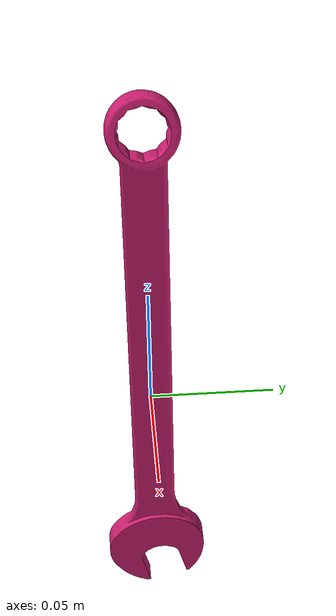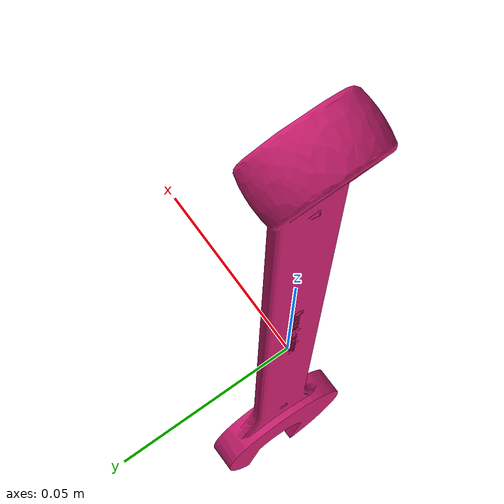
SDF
<?xml version="1.0"?>
<sdf version="1.7">
  <model name="combination_wrench_17mm_bright">
    <pose>0 0 0 0 0 0</pose>
    <static>false</static>
    <link name="link">
      <!-- link frame = tool CoM; Z = long axis (+ toward tool end), X = forward, Y = Z x X -->
      <inertial>
        <pose>0 0 0 0 0 0</pose>
        <mass>0.189574</mass>
        <inertia>
          <ixx>1.161010e-03</ixx>
          <ixy>-2.060557e-21</ixy>
          <ixz>-8.578000e-22</ixz>
          <iyy>1.149066e-03</iyy>
          <iyz>5.371013e-22</iyz>
          <izz>1.393891e-05</izz>
        </inertia>
      </inertial>
      <collision name="collision">
        <geometry>
          <mesh>
            <uri>model://combination_wrench_17mm/meshes/combination_wrench_17mm.dae</uri>
          </mesh>
        </geometry>
      </collision>
      <visual name="visual">
        <geometry>
          <mesh>
            <uri>model://combination_wrench_17mm/meshes/combination_wrench_17mm.dae</uri>
          </mesh>
        </geometry>
        <material>
          <ambient>0.369 0.055 0.201 1.0</ambient>
          <diffuse>0.820 0.123 0.447 1.0</diffuse>
          <specular>0.85 0.85 0.85 1.0</specular>
          <emissive>0 0 0 1.0</emissive>
        </material>
      </visual>
    </link>
  </model>
</sdf>
